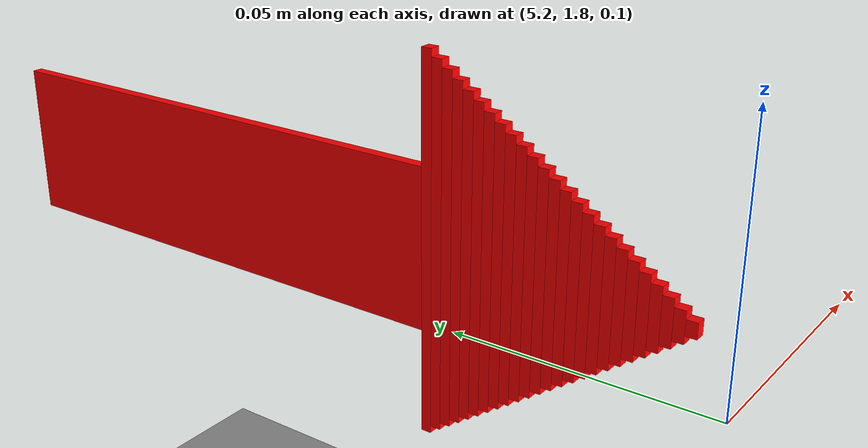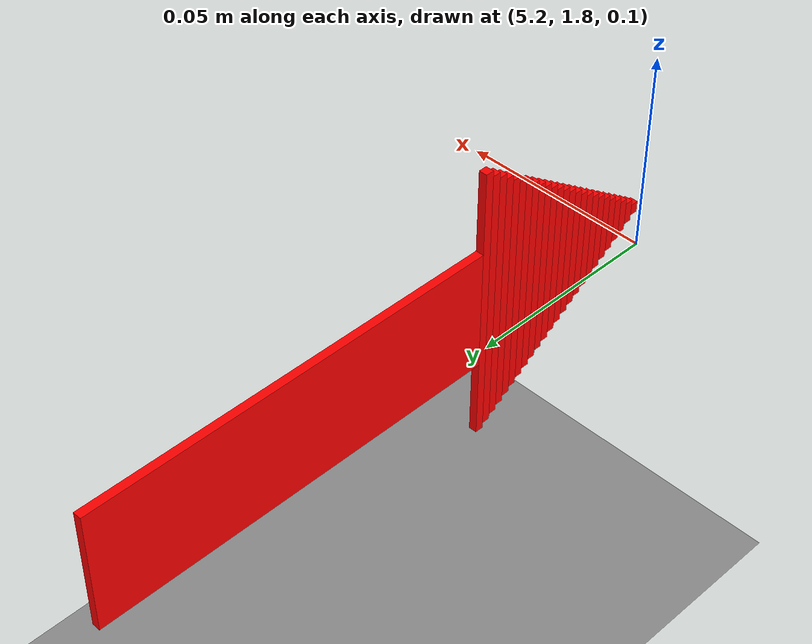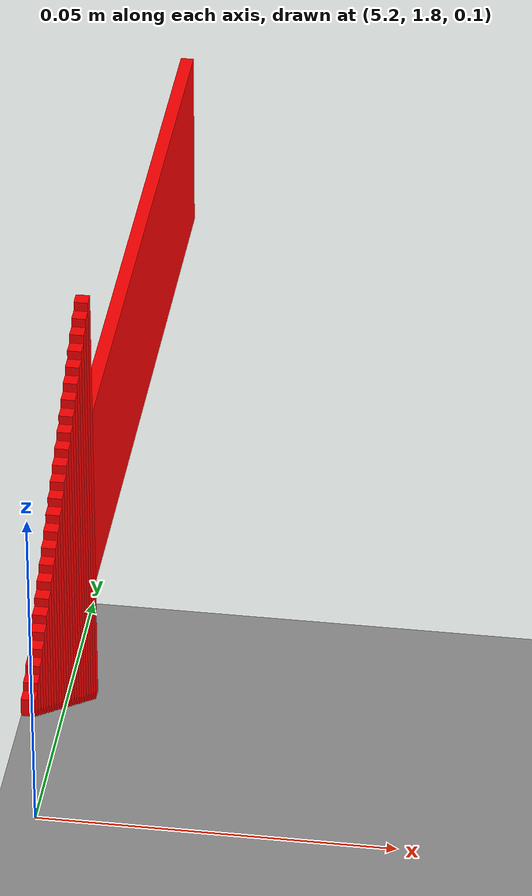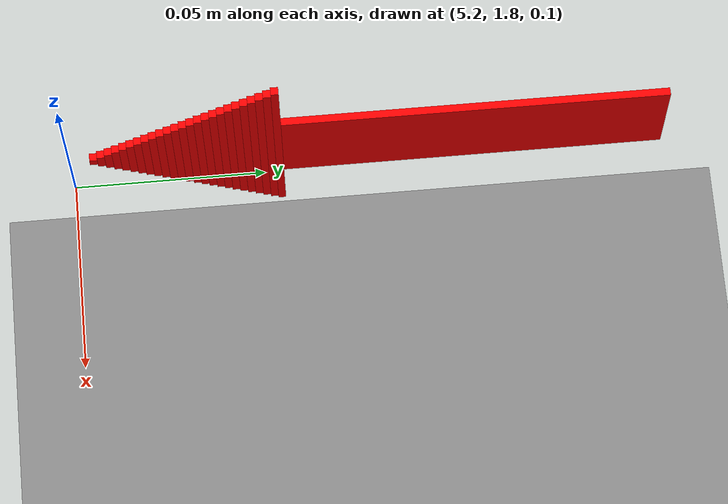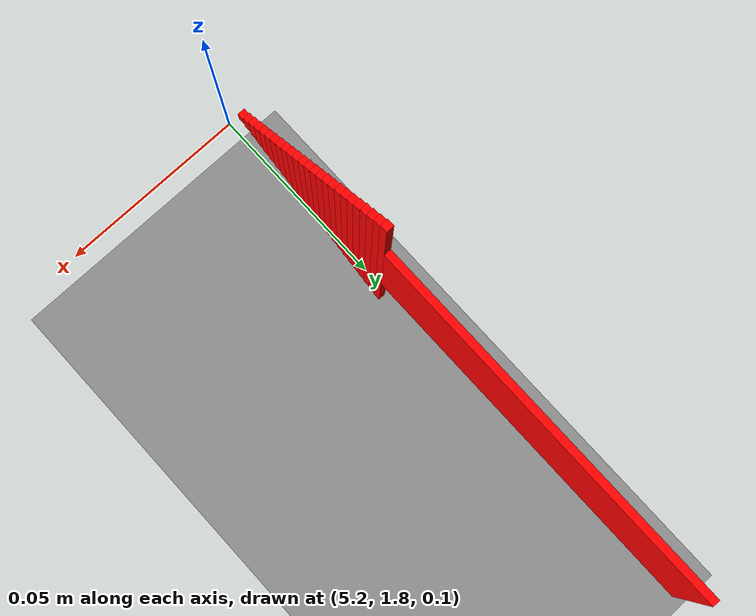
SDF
<sdf version="1.9">
 <world name="ros2_world">
  <model name="ground_plane">
   <static>true</static>
   <link name="link">
    <collision name="collision">
     <geometry><plane><normal>0 0 1</normal><size>30 30</size></plane></geometry>
    </collision>
    <visual name="visual">
     <geometry><plane><normal>0 0 1</normal><size>30 30</size></plane></geometry>
     <material><ambient>0.55 0.55 0.55 1</ambient><diffuse>0.55 0.55 0.55 1</diffuse></material>
    </visual>
   </link>
  </model>
  <model name="flechas">
   <static>true</static>
   <link name="flecha_15">
    <pose>5.1985 1.88 0.115 0 0 -1.5708</pose>
    <visual name="p0">
     <pose>-0.025 0 0 0 0 0</pose>
     <geometry><box><size>0.1 0.002 0.03</size></box></geometry>
     <material><ambient>1 0 0 1</ambient><diffuse>1 0 0 1</diffuse></material>
    </visual>
    <visual name="p1">
     <pose>0.026 0 0 0 0 0</pose>
     <geometry><box><size>0.002 0.002 0.07</size></box></geometry>
     <material><ambient>1 0 0 1</ambient><diffuse>1 0 0 1</diffuse></material>
    </visual>
    <visual name="p2">
     <pose>0.028 0 0 0 0 0</pose>
     <geometry><box><size>0.002 0.002 0.0672</size></box></geometry>
     <material><ambient>1 0 0 1</ambient><diffuse>1 0 0 1</diffuse></material>
    </visual>
    <visual name="p3">
     <pose>0.03 0 0 0 0 0</pose>
     <geometry><box><size>0.002 0.002 0.0644</size></box></geometry>
     <material><ambient>1 0 0 1</ambient><diffuse>1 0 0 1</diffuse></material>
    </visual>
    <visual name="p4">
     <pose>0.032 0 0 0 0 0</pose>
     <geometry><box><size>0.002 0.002 0.0616</size></box></geometry>
     <material><ambient>1 0 0 1</ambient><diffuse>1 0 0 1</diffuse></material>
    </visual>
    <visual name="p5">
     <pose>0.034 0 0 0 0 0</pose>
     <geometry><box><size>0.002 0.002 0.0588</size></box></geometry>
     <material><ambient>1 0 0 1</ambient><diffuse>1 0 0 1</diffuse></material>
    </visual>
    <visual name="p6">
     <pose>0.036 0 0 0 0 0</pose>
     <geometry><box><size>0.002 0.002 0.056</size></box></geometry>
     <material><ambient>1 0 0 1</ambient><diffuse>1 0 0 1</diffuse></material>
    </visual>
    <visual name="p7">
     <pose>0.038 0 0 0 0 0</pose>
     <geometry><box><size>0.002 0.002 0.0532</size></box></geometry>
     <material><ambient>1 0 0 1</ambient><diffuse>1 0 0 1</diffuse></material>
    </visual>
    <visual name="p8">
     <pose>0.04 0 0 0 0 0</pose>
     <geometry><box><size>0.002 0.002 0.0504</size></box></geometry>
     <material><ambient>1 0 0 1</ambient><diffuse>1 0 0 1</diffuse></material>
    </visual>
    <visual name="p9">
     <pose>0.042 0 0 0 0 0</pose>
     <geometry><box><size>0.002 0.002 0.0476</size></box></geometry>
     <material><ambient>1 0 0 1</ambient><diffuse>1 0 0 1</diffuse></material>
    </visual>
    <visual name="p10">
     <pose>0.044 0 0 0 0 0</pose>
     <geometry><box><size>0.002 0.002 0.0448</size></box></geometry>
     <material><ambient>1 0 0 1</ambient><diffuse>1 0 0 1</diffuse></material>
    </visual>
    <visual name="p11">
     <pose>0.046 0 0 0 0 0</pose>
     <geometry><box><size>0.002 0.002 0.042</size></box></geometry>
     <material><ambient>1 0 0 1</ambient><diffuse>1 0 0 1</diffuse></material>
    </visual>
    <visual name="p12">
     <pose>0.048 0 0 0 0 0</pose>
     <geometry><box><size>0.002 0.002 0.0392</size></box></geometry>
     <material><ambient>1 0 0 1</ambient><diffuse>1 0 0 1</diffuse></material>
    </visual>
    <visual name="p13">
     <pose>0.05 0 0 0 0 0</pose>
     <geometry><box><size>0.002 0.002 0.0364</size></box></geometry>
     <material><ambient>1 0 0 1</ambient><diffuse>1 0 0 1</diffuse></material>
    </visual>
    <visual name="p14">
     <pose>0.052 0 0 0 0 0</pose>
     <geometry><box><size>0.002 0.002 0.0336</size></box></geometry>
     <material><ambient>1 0 0 1</ambient><diffuse>1 0 0 1</diffuse></material>
    </visual>
    <visual name="p15">
     <pose>0.054 0 0 0 0 0</pose>
     <geometry><box><size>0.002 0.002 0.0308</size></box></geometry>
     <material><ambient>1 0 0 1</ambient><diffuse>1 0 0 1</diffuse></material>
    </visual>
    <visual name="p16">
     <pose>0.056 0 0 0 0 0</pose>
     <geometry><box><size>0.002 0.002 0.028</size></box></geometry>
     <material><ambient>1 0 0 1</ambient><diffuse>1 0 0 1</diffuse></material>
    </visual>
    <visual name="p17">
     <pose>0.058 0 0 0 0 0</pose>
     <geometry><box><size>0.002 0.002 0.0252</size></box></geometry>
     <material><ambient>1 0 0 1</ambient><diffuse>1 0 0 1</diffuse></material>
    </visual>
    <visual name="p18">
     <pose>0.06 0 0 0 0 0</pose>
     <geometry><box><size>0.002 0.002 0.0224</size></box></geometry>
     <material><ambient>1 0 0 1</ambient><diffuse>1 0 0 1</diffuse></material>
    </visual>
    <visual name="p19">
     <pose>0.062 0 0 0 0 0</pose>
     <geometry><box><size>0.002 0.002 0.0196</size></box></geometry>
     <material><ambient>1 0 0 1</ambient><diffuse>1 0 0 1</diffuse></material>
    </visual>
    <visual name="p20">
     <pose>0.064 0 0 0 0 0</pose>
     <geometry><box><size>0.002 0.002 0.0168</size></box></geometry>
     <material><ambient>1 0 0 1</ambient><diffuse>1 0 0 1</diffuse></material>
    </visual>
    <visual name="p21">
     <pose>0.066 0 0 0 0 0</pose>
     <geometry><box><size>0.002 0.002 0.014</size></box></geometry>
     <material><ambient>1 0 0 1</ambient><diffuse>1 0 0 1</diffuse></material>
    </visual>
    <visual name="p22">
     <pose>0.068 0 0 0 0 0</pose>
     <geometry><box><size>0.002 0.002 0.0112</size></box></geometry>
     <material><ambient>1 0 0 1</ambient><diffuse>1 0 0 1</diffuse></material>
    </visual>
    <visual name="p23">
     <pose>0.07 0 0 0 0 0</pose>
     <geometry><box><size>0.002 0.002 0.0084</size></box></geometry>
     <material><ambient>1 0 0 1</ambient><diffuse>1 0 0 1</diffuse></material>
    </visual>
    <visual name="p24">
     <pose>0.072 0 0 0 0 0</pose>
     <geometry><box><size>0.002 0.002 0.0056</size></box></geometry>
     <material><ambient>1 0 0 1</ambient><diffuse>1 0 0 1</diffuse></material>
    </visual>
    <visual name="p25">
     <pose>0.074 0 0 0 0 0</pose>
     <geometry><box><size>0.002 0.002 0.0028</size></box></geometry>
     <material><ambient>1 0 0 1</ambient><diffuse>1 0 0 1</diffuse></material>
    </visual>
   </link>
  </model>
 </world>
</sdf>
